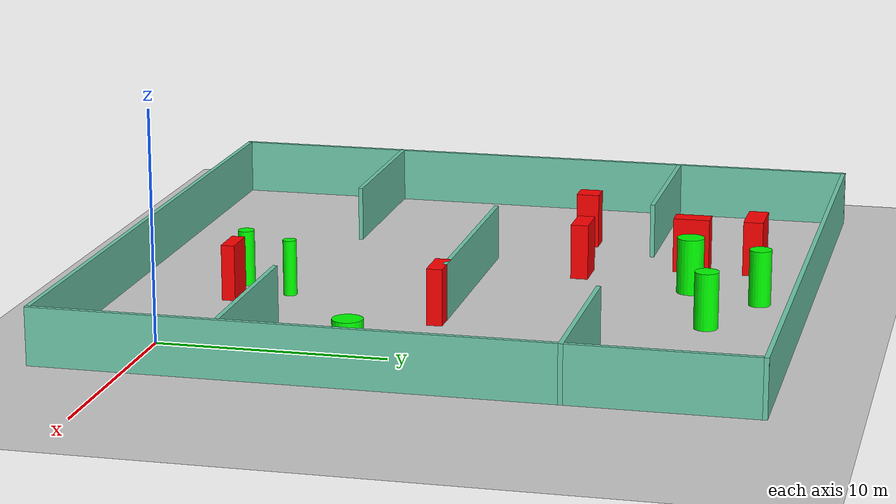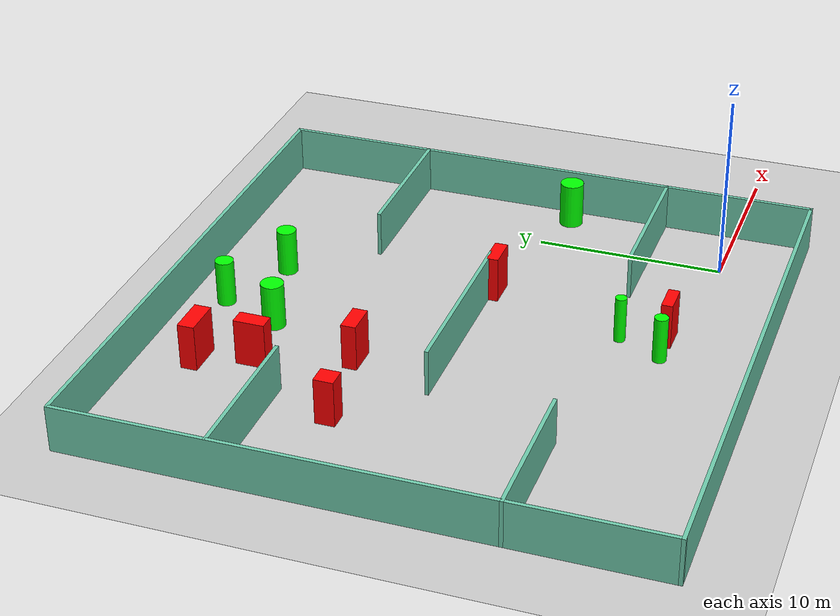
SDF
<sdf version="1.7">
 <world name="default">
  <light name="sun" type="directional">
   <pose>0 0 10 0 -0 0</pose>
   <diffuse>0.8 0.8 0.8 1</diffuse>
   <specular>0.2 0.2 0.2 1</specular>
   <attenuation>
    <range>1000</range>
    <constant>0.9</constant>
    <linear>0.01</linear>
    <quadratic>0.001</quadratic>
   </attenuation>
   <direction>-0.5 0.1 -0.9</direction>
   <spot><inner_angle>0</inner_angle><outer_angle>0</outer_angle><falloff>0</falloff></spot>
  </light>
  <model name="ground_plane">
   <static>1</static>
   <link name="link">
    <collision name="collision">
     <geometry><plane><normal>0 0 1</normal><size>100 100</size></plane></geometry>
     <surface>
      <contact><collide_bitmask>65535</collide_bitmask></contact>
      <friction><ode><mu>100</mu><mu2>50</mu2></ode></friction>
     </surface>
    </collision>
    <visual name="visual">
     <cast_shadows>0</cast_shadows>
     <geometry><plane><normal>0 0 1</normal><size>100 100</size></plane></geometry>
     <material>
      <script><uri>file://media/materials/scripts/gazebo.material</uri><name>Gazebo/Grey</name></script>
     </material>
    </visual>
   </link>
  </model>
  <gravity>0 0 -9.8</gravity>
  <magnetic_field>6e-06 2.3e-05 -4.2e-05</magnetic_field>
  <atmosphere type="adiabatic"/>
  <physics type="ode">
   <max_step_size>0.001</max_step_size>
   <real_time_factor>1</real_time_factor>
   <real_time_update_rate>1000</real_time_update_rate>
  </physics>
  <scene><ambient>0.4 0.4 0.4 1</ambient><background>0.7 0.7 0.7 1</background><shadows>1</shadows></scene>
  <spherical_coordinates>
   <surface_model>EARTH_WGS84</surface_model>
   <latitude_deg>0</latitude_deg>
   <longitude_deg>0</longitude_deg>
   <elevation>0</elevation>
   <heading_deg>0</heading_deg>
  </spherical_coordinates>
  <model name="my_base_walls">
   <link name="Wall_10">
    <collision name="Wall_10_Collision">
     <geometry><box><size>8.2 0.2 2.5</size></box></geometry>
     <pose>0 0 1.25 0 -0 0</pose>
    </collision>
    <visual name="Wall_10_Visual">
     <pose>0 0 1.25 0 -0 0</pose>
     <geometry><box><size>8.2 0.2 2.5</size></box></geometry>
     <material>
      <script><uri>file://media/materials/scripts/gazebo.material</uri><name>Gazebo/Grey</name></script>
      <ambient>0.435294 0.796078 0.67451 1</ambient>
     </material>
     <meta><layer>0</layer></meta>
    </visual>
    <pose>-11 -7 0 0 -0 0</pose>
   </link>
   <link name="Wall_12">
    <collision name="Wall_12_Collision">
     <geometry><box><size>8.2 0.2 2.5</size></box></geometry>
     <pose>0 0 1.25 0 -0 0</pose>
    </collision>
    <visual name="Wall_12_Visual">
     <pose>0 0 1.25 0 -0 0</pose>
     <geometry><box><size>8.2 0.2 2.5</size></box></geometry>
     <material>
      <script><uri>file://media/materials/scripts/gazebo.material</uri><name>Gazebo/Grey</name></script>
      <ambient>0.435294 0.796078 0.67451 1</ambient>
     </material>
     <meta><layer>0</layer></meta>
    </visual>
    <pose>-11 7 0 0 -0 0</pose>
   </link>
   <link name="Wall_14">
    <collision name="Wall_14_Collision">
     <geometry><box><size>8.2 0.2 2.5</size></box></geometry>
     <pose>0 0 1.25 0 -0 0</pose>
    </collision>
    <visual name="Wall_14_Visual">
     <pose>0 0 1.25 0 -0 0</pose>
     <geometry><box><size>8.2 0.2 2.5</size></box></geometry>
     <material>
      <script><uri>file://media/materials/scripts/gazebo.material</uri><name>Gazebo/Grey</name></script>
      <ambient>0.435294 0.796078 0.67451 1</ambient>
     </material>
     <meta><layer>0</layer></meta>
    </visual>
    <pose>11 7 0 0 -0 3.14159</pose>
   </link>
   <link name="Wall_16">
    <collision name="Wall_16_Collision">
     <geometry><box><size>10.2 0.2 2.5</size></box></geometry>
     <pose>0 0 1.25 0 -0 0</pose>
    </collision>
    <visual name="Wall_16_Visual">
     <pose>0 0 1.25 0 -0 0</pose>
     <geometry><box><size>10.2 0.2 2.5</size></box></geometry>
     <material>
      <script><uri>file://media/materials/scripts/gazebo.material</uri><name>Gazebo/Grey</name></script>
      <ambient>0.435294 0.796078 0.67451 1</ambient>
     </material>
     <meta><layer>0</layer></meta>
    </visual>
    <pose>0 0 0 0 -0 3.14159</pose>
   </link>
   <link name="Wall_2">
    <collision name="Wall_2_Collision">
     <geometry><box><size>30.2 0.2 2.5</size></box></geometry>
     <pose>0 0 1.25 0 -0 0</pose>
    </collision>
    <visual name="Wall_2_Visual">
     <pose>0 0 1.25 0 -0 0</pose>
     <geometry><box><size>30.2 0.2 2.5</size></box></geometry>
     <material>
      <script><uri>file://media/materials/scripts/gazebo.material</uri><name>Gazebo/Grey</name></script>
      <ambient>0.435294 0.796078 0.67451 1</ambient>
     </material>
     <meta><layer>0</layer></meta>
    </visual>
    <pose>0 -15 0 0 -0 3.14159</pose>
   </link>
   <link name="Wall_3">
    <collision name="Wall_3_Collision">
     <geometry><box><size>30.2 0.2 2.5</size></box></geometry>
     <pose>0 0 1.25 0 -0 0</pose>
    </collision>
    <visual name="Wall_3_Visual">
     <pose>0 0 1.25 0 -0 0</pose>
     <geometry><box><size>30.2 0.2 2.5</size></box></geometry>
     <material>
      <script><uri>file://media/materials/scripts/gazebo.material</uri><name>Gazebo/Grey</name></script>
      <ambient>0.435294 0.796078 0.67451 1</ambient>
     </material>
     <meta><layer>0</layer></meta>
    </visual>
    <pose>-15 0 0 0 -0 1.5708</pose>
   </link>
   <link name="Wall_4">
    <collision name="Wall_4_Collision">
     <geometry><box><size>30.2 0.2 2.5</size></box></geometry>
     <pose>0 0 1.25 0 -0 0</pose>
    </collision>
    <visual name="Wall_4_Visual">
     <pose>0 0 1.25 0 -0 0</pose>
     <geometry><box><size>30.2 0.2 2.5</size></box></geometry>
     <material>
      <script><uri>file://media/materials/scripts/gazebo.material</uri><name>Gazebo/Grey</name></script>
      <ambient>0.435294 0.796078 0.67451 1</ambient>
     </material>
     <meta><layer>0</layer></meta>
    </visual>
    <pose>0 15 0 0 -0 0</pose>
   </link>
   <link name="Wall_6">
    <collision name="Wall_6_Collision">
     <geometry><box><size>30.2 0.2 2.5</size></box></geometry>
     <pose>0 0 1.25 0 -0 0</pose>
    </collision>
    <visual name="Wall_6_Visual">
     <pose>0 0 1.25 0 -0 0</pose>
     <geometry><box><size>30.2 0.2 2.5</size></box></geometry>
     <material>
      <script><uri>file://media/materials/scripts/gazebo.material</uri><name>Gazebo/Grey</name></script>
      <ambient>0.435294 0.796078 0.67451 1</ambient>
     </material>
     <meta><layer>0</layer></meta>
    </visual>
    <pose>15 0 0 0 -0 1.5708</pose>
   </link>
   <link name="Wall_8">
    <collision name="Wall_8_Collision">
     <geometry><box><size>8.2 0.2 2.5</size></box></geometry>
     <pose>0 0 1.25 0 -0 0</pose>
    </collision>
    <visual name="Wall_8_Visual">
     <pose>0 0 1.25 0 -0 0</pose>
     <geometry><box><size>8.2 0.2 2.5</size></box></geometry>
     <material>
      <script><uri>file://media/materials/scripts/gazebo.material</uri><name>Gazebo/Grey</name></script>
      <ambient>0.435294 0.796078 0.67451 1</ambient>
     </material>
     <meta><layer>0</layer></meta>
    </visual>
    <pose>11 -7 0 0 -0 3.14159</pose>
   </link>
   <static>1</static>
   <pose>-11 11 0 0 -0 0</pose>
  </model>
  <model name="cylinder1">
   <static>1</static>
   <link name="link">
    <inertial>
     <mass>1</mass>
     <inertia><ixx>0.5</ixx><ixy>0</ixy><ixz>0</ixz><iyy>0.5</iyy><iyz>0</iyz><izz>1</izz></inertia>
    </inertial>
    <collision name="collision">
     <geometry><cylinder><radius>0.302535981084597</radius><length>2.5</length></cylinder></geometry>
    </collision>
    <visual name="visual">
     <geometry><cylinder><radius>0.302535981084597</radius><length>2.5</length></cylinder></geometry>
     <material>
      <ambient>0 1 0 1</ambient>
      <diffuse>0 1 0 1</diffuse>
      <specular>0.1 0.1 0.1 1</specular>
      <emissive>0 0 0 0</emissive>
     </material>
    </visual>
   </link>
   <pose>-8.233944867288402 3.394174251116901 1.25 0 0 0</pose>
  </model>
  <model name="cylinder2">
   <static>1</static>
   <link name="link">
    <inertial>
     <mass>1</mass>
     <inertia><ixx>0.5</ixx><ixy>0</ixy><ixz>0</ixz><iyy>0.5</iyy><iyz>0</iyz><izz>1</izz></inertia>
    </inertial>
    <collision name="collision">
     <geometry><cylinder><radius>0.6068599427478183</radius><length>2.5</length></cylinder></geometry>
    </collision>
    <visual name="visual">
     <geometry><cylinder><radius>0.6068599427478183</radius><length>2.5</length></cylinder></geometry>
     <material>
      <ambient>0 1 0 1</ambient>
      <diffuse>0 1 0 1</diffuse>
      <specular>0.1 0.1 0.1 1</specular>
      <emissive>0 0 0 0</emissive>
     </material>
    </visual>
   </link>
   <pose>-12.581221857526863 20.586289796966955 1.25 0 0 0</pose>
  </model>
  <model name="cylinder3">
   <static>1</static>
   <link name="link">
    <inertial>
     <mass>1</mass>
     <inertia><ixx>0.5</ixx><ixy>0</ixy><ixz>0</ixz><iyy>0.5</iyy><iyz>0</iyz><izz>1</izz></inertia>
    </inertial>
    <collision name="collision">
     <geometry><cylinder><radius>0.367827815374303</radius><length>2.5</length></cylinder></geometry>
    </collision>
    <visual name="visual">
     <geometry><cylinder><radius>0.367827815374303</radius><length>2.5</length></cylinder></geometry>
     <material>
      <ambient>0 1 0 1</ambient>
      <diffuse>0 1 0 1</diffuse>
      <specular>0.1 0.1 0.1 1</specular>
      <emissive>0 0 0 0</emissive>
     </material>
    </visual>
   </link>
   <pose>-9.406652435367342 1.0261814865252417 1.25 0 0 0</pose>
  </model>
  <model name="cylinder4">
   <static>1</static>
   <link name="link">
    <inertial>
     <mass>1</mass>
     <inertia><ixx>0.5</ixx><ixy>0</ixy><ixz>0</ixz><iyy>0.5</iyy><iyz>0</iyz><izz>1</izz></inertia>
    </inertial>
    <collision name="collision">
     <geometry><cylinder><radius>0.6415329371487812</radius><length>2.5</length></cylinder></geometry>
    </collision>
    <visual name="visual">
     <geometry><cylinder><radius>0.6415329371487812</radius><length>2.5</length></cylinder></geometry>
     <material>
      <ambient>0 1 0 1</ambient>
      <diffuse>0 1 0 1</diffuse>
      <specular>0.1 0.1 0.1 1</specular>
      <emissive>0 0 0 0</emissive>
     </material>
    </visual>
   </link>
   <pose>2.7272262534234564 9.090236238924495 1.25 0 0 0</pose>
  </model>
  <model name="cylinder5">
   <static>1</static>
   <link name="link">
    <inertial>
     <mass>1</mass>
     <inertia><ixx>0.5</ixx><ixy>0</ixy><ixz>0</ixz><iyy>0.5</iyy><iyz>0</iyz><izz>1</izz></inertia>
    </inertial>
    <collision name="collision">
     <geometry><cylinder><radius>0.5276805474249925</radius><length>2.5</length></cylinder></geometry>
    </collision>
    <visual name="visual">
     <geometry><cylinder><radius>0.5276805474249925</radius><length>2.5</length></cylinder></geometry>
     <material>
      <ambient>0 1 0 1</ambient>
      <diffuse>0 1 0 1</diffuse>
      <specular>0.1 0.1 0.1 1</specular>
      <emissive>0 0 0 0</emissive>
     </material>
    </visual>
   </link>
   <pose>-7.30008485806232 22.058632452991922 1.25 0 0 0</pose>
  </model>
  <model name="cylinder6">
   <static>1</static>
   <link name="link">
    <inertial>
     <mass>1</mass>
     <inertia><ixx>0.5</ixx><ixy>0</ixy><ixz>0</ixz><iyy>0.5</iyy><iyz>0</iyz><izz>1</izz></inertia>
    </inertial>
    <collision name="collision">
     <geometry><cylinder><radius>0.491087522999029</radius><length>2.5</length></cylinder></geometry>
    </collision>
    <visual name="visual">
     <geometry><cylinder><radius>0.491087522999029</radius><length>2.5</length></cylinder></geometry>
     <material>
      <ambient>0 1 0 1</ambient>
      <diffuse>0 1 0 1</diffuse>
      <specular>0.1 0.1 0.1 1</specular>
      <emissive>0 0 0 0</emissive>
     </material>
    </visual>
   </link>
   <pose>-11.28174618861422 23.84835400462788 1.25 0 0 0</pose>
  </model>
  <model name="box1">
   <static>1</static>
   <link name="link">
    <inertial>
     <mass>1</mass>
     <inertia><ixx>0.083</ixx><ixy>0</ixy><ixz>0</ixz><iyy>0.083</iyy><iyz>0</iyz><izz>0.083</izz></inertia>
    </inertial>
    <collision name="collision">
     <geometry><box><size>0.8732742022583744 1.6406678044043417 2.5</size></box></geometry>
    </collision>
    <visual name="visual">
     <geometry><box><size>0.8732742022583744 1.6406678044043417 2.5</size></box></geometry>
     <material>
      <ambient>1 0 0 1</ambient>
      <diffuse>1 0 0 1</diffuse>
      <specular>0.1 0.1 0.1 1</specular>
      <emissive>0 0 0 0</emissive>
     </material>
    </visual>
    <sensor name="my_contact" type="contact">
     <contact><collision>box_collision</collision><topic>__default_topic__</topic></contact>
    </sensor>
   </link>
   <pose>-16.078089872841357 20.147567807668953 1.25 0 0 0</pose>
  </model>
  <model name="box2">
   <static>1</static>
   <link name="link">
    <inertial>
     <mass>1</mass>
     <inertia><ixx>0.083</ixx><ixy>0</ixy><ixz>0</ixz><iyy>0.083</iyy><iyz>0</iyz><izz>0.083</izz></inertia>
    </inertial>
    <collision name="collision">
     <geometry><box><size>1.014686152847036 1.037232842093529 2.5</size></box></geometry>
    </collision>
    <visual name="visual">
     <geometry><box><size>1.014686152847036 1.037232842093529 2.5</size></box></geometry>
     <material>
      <ambient>1 0 0 1</ambient>
      <diffuse>1 0 0 1</diffuse>
      <specular>0.1 0.1 0.1 1</specular>
      <emissive>0 0 0 0</emissive>
     </material>
    </visual>
    <sensor name="my_contact" type="contact">
     <contact><collision>box_collision</collision><topic>__default_topic__</topic></contact>
    </sensor>
   </link>
   <pose>-19.549288338548145 14.732441468091263 1.25 0 0 0</pose>
  </model>
  <model name="box3">
   <static>1</static>
   <link name="link">
    <inertial>
     <mass>1</mass>
     <inertia><ixx>0.083</ixx><ixy>0</ixy><ixz>0</ixz><iyy>0.083</iyy><iyz>0</iyz><izz>0.083</izz></inertia>
    </inertial>
    <collision name="collision">
     <geometry><box><size>1.6998741913502238 0.6911620787172607 2.5</size></box></geometry>
    </collision>
    <visual name="visual">
     <geometry><box><size>1.6998741913502238 0.6911620787172607 2.5</size></box></geometry>
     <material>
      <ambient>1 0 0 1</ambient>
      <diffuse>1 0 0 1</diffuse>
      <specular>0.1 0.1 0.1 1</specular>
      <emissive>0 0 0 0</emissive>
     </material>
    </visual>
    <sensor name="my_contact" type="contact">
     <contact><collision>box_collision</collision><topic>__default_topic__</topic></contact>
    </sensor>
   </link>
   <pose>-5.865663098578928 10.74021713772144 1.25 0 0 0</pose>
  </model>
  <model name="box4">
   <static>1</static>
   <link name="link">
    <inertial>
     <mass>1</mass>
     <inertia><ixx>0.083</ixx><ixy>0</ixy><ixz>0</ixz><iyy>0.083</iyy><iyz>0</iyz><izz>0.083</izz></inertia>
    </inertial>
    <collision name="collision">
     <geometry><box><size>1.6899046052250308 0.7875142679407505 2.5</size></box></geometry>
    </collision>
    <visual name="visual">
     <geometry><box><size>1.6899046052250308 0.7875142679407505 2.5</size></box></geometry>
     <material>
      <ambient>1 0 0 1</ambient>
      <diffuse>1 0 0 1</diffuse>
      <specular>0.1 0.1 0.1 1</specular>
      <emissive>0 0 0 0</emissive>
     </material>
    </visual>
    <sensor name="my_contact" type="contact">
     <contact><collision>box_collision</collision><topic>__default_topic__</topic></contact>
    </sensor>
   </link>
   <pose>-14.348417103401658 15.398728012100296 1.25 0 0 0</pose>
  </model>
  <model name="box5">
   <static>1</static>
   <link name="link">
    <inertial>
     <mass>1</mass>
     <inertia><ixx>0.083</ixx><ixy>0</ixy><ixz>0</ixz><iyy>0.083</iyy><iyz>0</iyz><izz>0.083</izz></inertia>
    </inertial>
    <collision name="collision">
     <geometry><box><size>2.031811815153328 0.8917764136624415 2.5</size></box></geometry>
    </collision>
    <visual name="visual">
     <geometry><box><size>2.031811815153328 0.8917764136624415 2.5</size></box></geometry>
     <material>
      <ambient>1 0 0 1</ambient>
      <diffuse>1 0 0 1</diffuse>
      <specular>0.1 0.1 0.1 1</specular>
      <emissive>0 0 0 0</emissive>
     </material>
    </visual>
    <sensor name="my_contact" type="contact">
     <contact><collision>box_collision</collision><topic>__default_topic__</topic></contact>
    </sensor>
   </link>
   <pose>-16.75442470349001 22.95154368669881 1.25 0 0 0</pose>
  </model>
  <model name="box6">
   <static>1</static>
   <link name="link">
    <inertial>
     <mass>1</mass>
     <inertia><ixx>0.083</ixx><ixy>0</ixy><ixz>0</ixz><iyy>0.083</iyy><iyz>0</iyz><izz>0.083</izz></inertia>
    </inertial>
    <collision name="collision">
     <geometry><box><size>1.592679482741506 0.5974502386036088 2.5</size></box></geometry>
    </collision>
    <visual name="visual">
     <geometry><box><size>1.592679482741506 0.5974502386036088 2.5</size></box></geometry>
     <material>
      <ambient>1 0 0 1</ambient>
      <diffuse>1 0 0 1</diffuse>
      <specular>0.1 0.1 0.1 1</specular>
      <emissive>0 0 0 0</emissive>
     </material>
    </visual>
    <sensor name="my_contact" type="contact">
     <contact><collision>box_collision</collision><topic>__default_topic__</topic></contact>
    </sensor>
   </link>
   <pose>-7.464674686932403 1.0331355351276885 1.25 0 0 0</pose>
  </model>
 </world>
</sdf>
